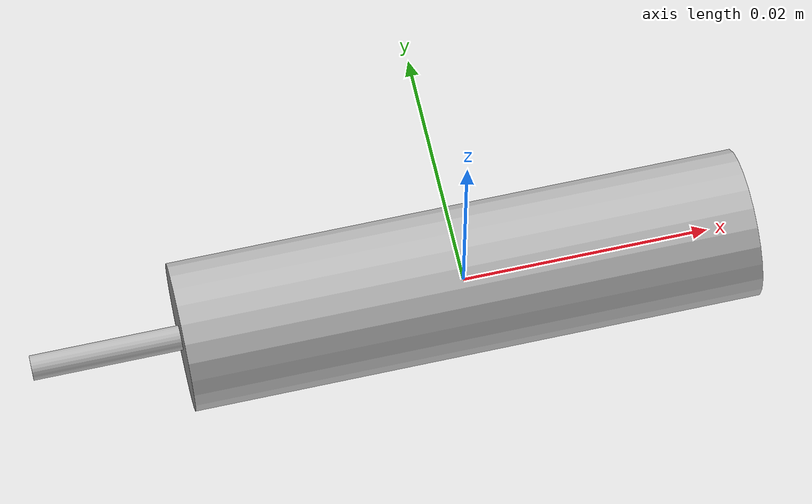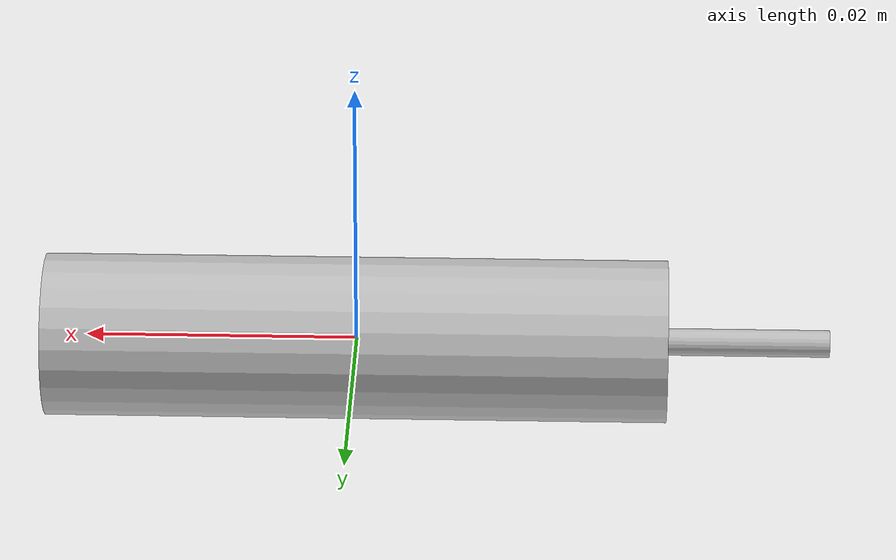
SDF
<?xml version="1.0" ?>
<sdf version="1.6">
  <model name="proximity_sick_mm12">
    <link name="body">
      <visual name="visual">
        <pose>0 0 0 0 1.5708 0</pose>
        <geometry>
          <cylinder>
            <radius>0.006</radius> <!-- diameter of sensing head -->
            <length>0.046</length> <!-- length of sensor body -->
          </cylinder>
        </geometry>
      </visual>
      <collision name="collision">
        <pose>0 0 0 0 1.5708 0</pose>
        <geometry>
          <cylinder>
            <radius>0.006</radius> <!-- diameter of sensing head -->
            <length>0.046</length> <!-- length of sensor body -->
          </cylinder>
        </geometry>
      </collision>
      <sensor name="proximity_sensor" type="ray">
        <plugin name="proximity_ray_plugin" filename="libROSProximityRayPlugin.so" >
          <robotNamespace>ariac</robotNamespace>
          <time_delay>0.02</time_delay><!-- this modifies the update rate of the ray sensor -->
          <!-- the ray sensor doesn't have setters for these yet unfortunately so they have to be set in the ray tags -->
        </plugin>

        <!-- using min angle of 0.005: -->
        <!-- dx = diameter / 0.01 - length -->
        <pose>-1.154 0 0 0 0 0</pose>                   <!-- -dx 0 0 0 0 0 -->
        <ray>
          <range>
            <min>1.214</min>                            <!-- dx + min range -->
            <max>1.274</max>                            <!-- dx + max range -->
            <resolution>0.001</resolution>
          </range>

          <!-- nothing below this line really needs to be modified upon change of sensor model -->

          <scan>
            <horizontal>
              <samples>10</samples>
              <resolution>1</resolution>
              <min_angle>-0.005</min_angle>
              <max_angle>0.005</max_angle>
            </horizontal>
            <vertical>
              <samples>10</samples>
              <resolution>1</resolution>
              <min_angle>-0.005</min_angle>
              <max_angle>0.005</max_angle>
            </vertical>
          </scan>
          <noise>
            <type>gaussian</type>
            <mean>0.0</mean>
            <stddev>0.001</stddev>
          </noise>
        </ray>

        <always_on>1</always_on>
        <visualize>false</visualize>
      </sensor>
      <gravity>false</gravity>
      <inertial>
        <mass>0.1</mass>
      </inertial>
    </link>
    <link name="cord">
      <gravity>false</gravity>
      <visual name="visual">
        <pose>-0.025 0 0 0 1.5708 0</pose>
        <geometry>
          <cylinder>
            <radius>0.001</radius> <!-- diameter of sensing head -->
            <length>0.02</length> <!-- length of sensor body -->
          </cylinder>
        </geometry>
      </visual>
      <collision name="collision">
        <pose>-0.025 0 0 0 1.5708 0</pose>
        <geometry>
          <cylinder>
            <radius>0.001</radius> <!-- diameter of sensing head -->
            <length>0.02</length> <!-- length of sensor body -->
          </cylinder>
        </geometry>
      </collision>
    </link>
  </model>
</sdf>
